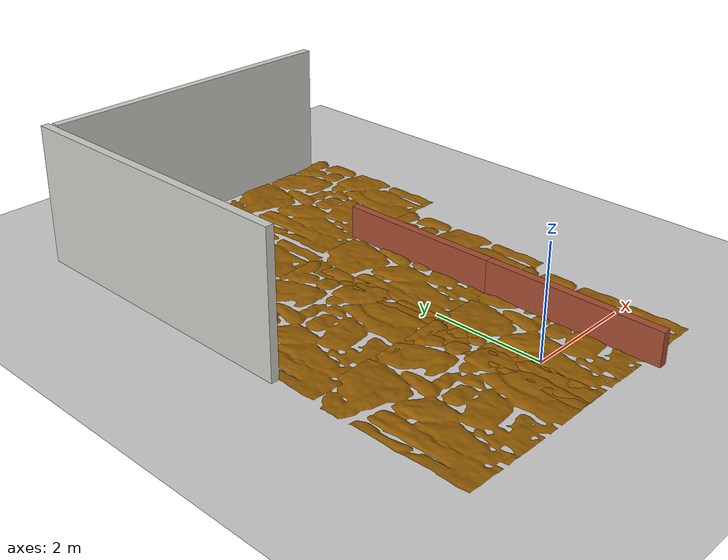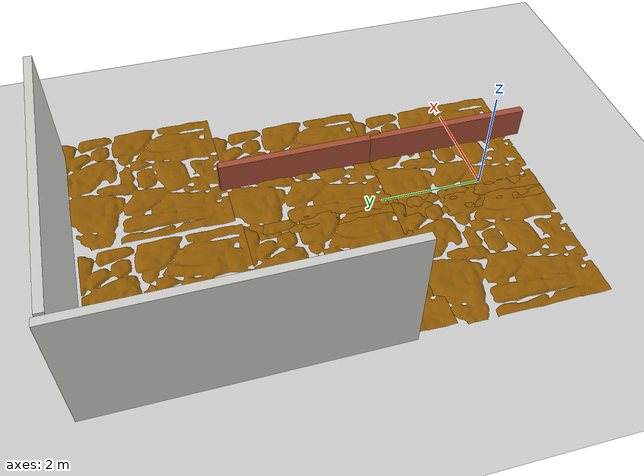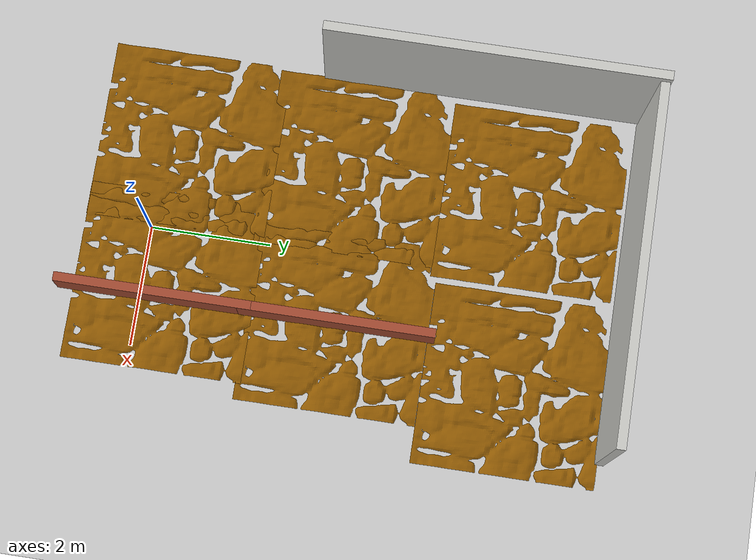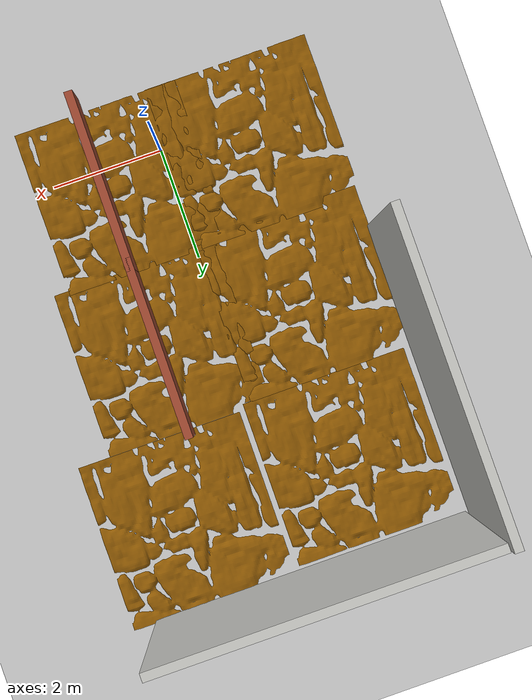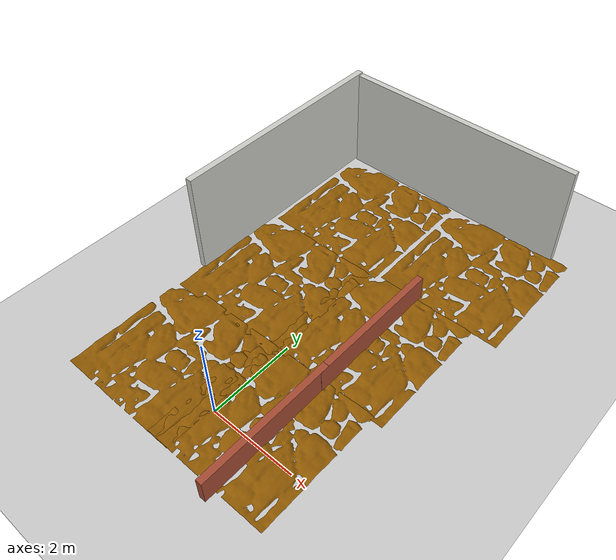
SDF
<sdf version="1.6">
 <world name="default">
  <model name="ground_plane">
   <static>1</static>
   <link name="link">
    <collision name="collision">
     <geometry><plane><normal>0 0 1</normal><size>100 100</size></plane></geometry>
     <surface>
      <contact><collide_bitmask>65535</collide_bitmask></contact>
      <friction><ode><mu>100</mu><mu2>50</mu2></ode></friction>
     </surface>
    </collision>
    <visual name="visual">
     <cast_shadows>0</cast_shadows>
     <geometry><plane><normal>0 0 1</normal><size>100 100</size></plane></geometry>
     <material>
      <script><uri>file://media/materials/scripts/gazebo.material</uri><name>Gazebo/Grey</name></script>
     </material>
    </visual>
   </link>
  </model>
  <model name="pared_corta_ladrillo">
   <pose>1.1558 0.273861 0 0 -0 0</pose>
   <link name="Wall_13">
    <collision name="Wall_13_Collision">
     <geometry><box><size>3.25 0.15 0.6</size></box></geometry>
     <pose>0 0 0.3 0 -0 0</pose>
    </collision>
    <visual name="Wall_13_Visual">
     <pose>0 0 0.3 0 -0 0</pose>
     <geometry><box><size>3.25 0.15 0.6</size></box></geometry>
     <material>
      <script><uri>file://media/materials/scripts/gazebo.material</uri><name>Gazebo/Bricks</name></script>
      <ambient>0.996078 0.47451 0.0196078 1</ambient>
     </material>
     <meta><layer>0</layer></meta>
    </visual>
    <pose>0 -0 0 0 -0 1.5708</pose>
   </link>
   <static>1</static>
  </model>
  <model name="pared_corta_ladrillo_0">
   <pose>1.15661 3.29537 0 0 -0 0</pose>
   <link name="Wall_13">
    <collision name="Wall_13_Collision">
     <geometry><box><size>3.25 0.15 0.6</size></box></geometry>
     <pose>0 0 0.3 0 -0 0</pose>
    </collision>
    <visual name="Wall_13_Visual">
     <pose>0 0 0.3 0 -0 0</pose>
     <geometry><box><size>3.25 0.15 0.6</size></box></geometry>
     <material>
      <script><uri>file://media/materials/scripts/gazebo.material</uri><name>Gazebo/Bricks</name></script>
      <ambient>0.996078 0.47451 0.0196078 1</ambient>
     </material>
     <meta><layer>0</layer></meta>
    </visual>
    <pose>0 -0 0 0 -0 1.5708</pose>
   </link>
   <static>1</static>
  </model>
  <model name="pared_1">
   <pose>-3.06855 5.20533 0 0 -0 0</pose>
   <link name="Wall_21">
    <collision name="Wall_21_Collision">
     <geometry><box><size>5.5 0.15 2.5</size></box></geometry>
     <pose>0 0 1.25 0 -0 0</pose>
    </collision>
    <visual name="Wall_21_Visual">
     <pose>0 0 1.25 0 -0 0</pose>
     <geometry><box><size>5.5 0.15 2.5</size></box></geometry>
     <material>
      <script><uri>file://media/materials/scripts/gazebo.material</uri><name>Gazebo/CeilingTiled</name></script>
      <ambient>1 1 1 1</ambient>
     </material>
     <meta><layer>0</layer></meta>
    </visual>
    <pose>0 0 0 0 -0 -1.5708</pose>
   </link>
   <static>1</static>
  </model>
  <model name="pared_2">
   <pose>-0.074522 7.8419 0 0 -0 0</pose>
   <link name="Wall_24">
    <collision name="Wall_24_Collision">
     <geometry><box><size>5.75 0.15 2.5</size></box></geometry>
     <pose>0 0 1.25 0 -0 0</pose>
    </collision>
    <visual name="Wall_24_Visual">
     <pose>0 0 1.25 0 -0 0</pose>
     <geometry><box><size>5.75 0.15 2.5</size></box></geometry>
     <material>
      <script><uri>file://media/materials/scripts/gazebo.material</uri><name>Gazebo/CeilingTiled</name></script>
      <ambient>1 1 1 1</ambient>
     </material>
     <meta><layer>0</layer></meta>
    </visual>
   </link>
   <static>1</static>
  </model>
  <model name="suelo_1_1">
   <link name="link_0">
    <inertial>
     <mass>1</mass>
     <inertia>
      <ixx>0.166667</ixx>
      <ixy>0</ixy>
      <ixz>0</ixz>
      <iyy>0.166667</iyy>
      <iyz>0</iyz>
      <izz>0.166667</izz>
     </inertia>
    </inertial>
    <pose>-2e-06 0 0 0 -0 0</pose>
    <gravity>0</gravity>
    <visual name="visual">
     <pose>0 0 0 1.57 -0 0</pose>
     <geometry>
      <mesh>
       <uri>/home/christyan/catkin_sureveg/src/explorador_2/worlds/Plantas/roca2.stl</uri>
       <scale>0.005 0.003 0.005</scale>
      </mesh>
     </geometry>
     <material>
      <lighting>1</lighting>
      <script><uri>file://media/materials/scripts/gazebo.material</uri><name>Gazebo/Grey</name></script>
      <shader type="vertex"><normal_map>__default__</normal_map></shader>
      <ambient>0.561 0.349 0.008 1</ambient>
      <diffuse>0.333 0.341 0.325 1</diffuse>
      <specular>0.561 0.349 0.008 1</specular>
      <emissive>0 0 0 1</emissive>
     </material>
    </visual>
    <collision name="collision">
     <pose>0 0 0 1.57 -0 0</pose>
     <geometry>
      <mesh>
       <uri>/home/christyan/catkin_sureveg/src/explorador_2/worlds/Plantas/roca2.stl</uri>
       <scale>0.005 0.003 0.005</scale>
      </mesh>
     </geometry>
     <surface>
      <friction>
       <ode><mu>1</mu><mu2>1</mu2><fdir1>0 0 0</fdir1><slip1>0</slip1><slip2>0</slip2></ode>
       <torsional>
        <coefficient>1</coefficient>
        <patch_radius>0</patch_radius>
        <surface_radius>0</surface_radius>
        <use_patch_radius>1</use_patch_radius>
        <ode><slip>0</slip></ode>
       </torsional>
      </friction>
      <bounce><restitution_coefficient>0</restitution_coefficient><threshold>1e+06</threshold></bounce>
      <contact>
       <collide_without_contact>1</collide_without_contact>
       <collide_without_contact_bitmask>1</collide_without_contact_bitmask>
       <collide_bitmask>1</collide_bitmask>
       <ode>
        <soft_cfm>0</soft_cfm>
        <soft_erp>0.2</soft_erp>
        <kp>1e+13</kp>
        <kd>1</kd>
        <max_vel>0.01</max_vel>
        <min_depth>0</min_depth>
       </ode>
       <bullet>
        <split_impulse>1</split_impulse>
        <split_impulse_penetration_threshold>-0.01</split_impulse_penetration_threshold>
        <soft_cfm>0</soft_cfm>
        <soft_erp>0.2</soft_erp>
        <kp>1e+13</kp>
        <kd>1</kd>
       </bullet>
      </contact>
     </surface>
    </collision>
   </link>
   <static>0</static>
   <pose>1.72058 6.30894 0 0 -0 0</pose>
  </model>
  <model name="suelo_1">
   <link name="link_0">
    <inertial>
     <mass>1</mass>
     <inertia>
      <ixx>0.166667</ixx>
      <ixy>0</ixy>
      <ixz>0</ixz>
      <iyy>0.166667</iyy>
      <iyz>0</iyz>
      <izz>0.166667</izz>
     </inertia>
    </inertial>
    <pose>-2e-06 0 0 0 -0 0</pose>
    <gravity>0</gravity>
    <visual name="visual">
     <pose>0 0 0 1.57 -0 0</pose>
     <geometry>
      <mesh>
       <uri>/home/christyan/catkin_sureveg/src/explorador_2/worlds/Plantas/roca2.stl</uri>
       <scale>0.005 0.003 0.005</scale>
      </mesh>
     </geometry>
     <material>
      <lighting>1</lighting>
      <script><uri>file://media/materials/scripts/gazebo.material</uri><name>Gazebo/Grey</name></script>
      <shader type="vertex"><normal_map>__default__</normal_map></shader>
      <ambient>0.561 0.349 0.008 1</ambient>
      <diffuse>0.333 0.341 0.325 1</diffuse>
      <specular>0.561 0.349 0.008 1</specular>
      <emissive>0 0 0 1</emissive>
     </material>
    </visual>
    <collision name="collision">
     <pose>0 0 0 1.57 -0 0</pose>
     <geometry>
      <mesh>
       <uri>/home/christyan/catkin_sureveg/src/explorador_2/worlds/Plantas/roca2.stl</uri>
       <scale>0.005 0.003 0.005</scale>
      </mesh>
     </geometry>
     <surface>
      <friction>
       <ode><mu>1</mu><mu2>1</mu2><fdir1>0 0 0</fdir1><slip1>0</slip1><slip2>0</slip2></ode>
       <torsional>
        <coefficient>1</coefficient>
        <patch_radius>0</patch_radius>
        <surface_radius>0</surface_radius>
        <use_patch_radius>1</use_patch_radius>
        <ode><slip>0</slip></ode>
       </torsional>
      </friction>
      <bounce><restitution_coefficient>0</restitution_coefficient><threshold>1e+06</threshold></bounce>
      <contact>
       <collide_without_contact>1</collide_without_contact>
       <collide_without_contact_bitmask>1</collide_without_contact_bitmask>
       <collide_bitmask>1</collide_bitmask>
       <ode>
        <soft_cfm>0</soft_cfm>
        <soft_erp>0.2</soft_erp>
        <kp>1e+13</kp>
        <kd>1</kd>
        <max_vel>0.01</max_vel>
        <min_depth>0</min_depth>
       </ode>
       <bullet>
        <split_impulse>1</split_impulse>
        <split_impulse_penetration_threshold>-0.01</split_impulse_penetration_threshold>
        <soft_cfm>0</soft_cfm>
        <soft_erp>0.2</soft_erp>
        <kp>1e+13</kp>
        <kd>1</kd>
       </bullet>
      </contact>
     </surface>
    </collision>
   </link>
   <static>0</static>
   <pose>-1.38068 6.20388 0 0 -0 0</pose>
  </model>
  <model name="suelo_1_0">
   <link name="link_0">
    <inertial>
     <mass>1</mass>
     <inertia>
      <ixx>0.166667</ixx>
      <ixy>0</ixy>
      <ixz>0</ixz>
      <iyy>0.166667</iyy>
      <iyz>0</iyz>
      <izz>0.166667</izz>
     </inertia>
    </inertial>
    <pose>-2e-06 0 0 0 -0 0</pose>
    <gravity>0</gravity>
    <visual name="visual">
     <pose>0 0 0 1.57 -0 0</pose>
     <geometry>
      <mesh>
       <uri>/home/christyan/catkin_sureveg/src/explorador_2/worlds/Plantas/roca2.stl</uri>
       <scale>0.005 0.003 0.005</scale>
      </mesh>
     </geometry>
     <material>
      <lighting>1</lighting>
      <script><uri>file://media/materials/scripts/gazebo.material</uri><name>Gazebo/Grey</name></script>
      <shader type="vertex"><normal_map>__default__</normal_map></shader>
      <ambient>0.561 0.349 0.008 1</ambient>
      <diffuse>0.333 0.341 0.325 1</diffuse>
      <specular>0.561 0.349 0.008 1</specular>
      <emissive>0 0 0 1</emissive>
     </material>
    </visual>
    <collision name="collision">
     <pose>0 0 0 1.57 -0 0</pose>
     <geometry>
      <mesh>
       <uri>/home/christyan/catkin_sureveg/src/explorador_2/worlds/Plantas/roca2.stl</uri>
       <scale>0.005 0.003 0.005</scale>
      </mesh>
     </geometry>
     <surface>
      <friction>
       <ode><mu>1</mu><mu2>1</mu2><fdir1>0 0 0</fdir1><slip1>0</slip1><slip2>0</slip2></ode>
       <torsional>
        <coefficient>1</coefficient>
        <patch_radius>0</patch_radius>
        <surface_radius>0</surface_radius>
        <use_patch_radius>1</use_patch_radius>
        <ode><slip>0</slip></ode>
       </torsional>
      </friction>
      <bounce><restitution_coefficient>0</restitution_coefficient><threshold>1e+06</threshold></bounce>
      <contact>
       <collide_without_contact>1</collide_without_contact>
       <collide_without_contact_bitmask>1</collide_without_contact_bitmask>
       <collide_bitmask>1</collide_bitmask>
       <ode>
        <soft_cfm>0</soft_cfm>
        <soft_erp>0.2</soft_erp>
        <kp>1e+13</kp>
        <kd>1</kd>
        <max_vel>0.01</max_vel>
        <min_depth>0</min_depth>
       </ode>
       <bullet>
        <split_impulse>1</split_impulse>
        <split_impulse_penetration_threshold>-0.01</split_impulse_penetration_threshold>
        <soft_cfm>0</soft_cfm>
        <soft_erp>0.2</soft_erp>
        <kp>1e+13</kp>
        <kd>1</kd>
       </bullet>
      </contact>
     </surface>
    </collision>
   </link>
   <static>0</static>
   <pose>-1.5235 3.21161 0 0 -0 0</pose>
  </model>
  <model name="suelo_1_2">
   <link name="link_0">
    <inertial>
     <mass>1</mass>
     <inertia>
      <ixx>0.166667</ixx>
      <ixy>0</ixy>
      <ixz>0</ixz>
      <iyy>0.166667</iyy>
      <iyz>0</iyz>
      <izz>0.166667</izz>
     </inertia>
    </inertial>
    <pose>-2e-06 0 0 0 -0 0</pose>
    <gravity>0</gravity>
    <visual name="visual">
     <pose>0 0 0 1.57 -0 0</pose>
     <geometry>
      <mesh>
       <uri>/home/christyan/catkin_sureveg/src/explorador_2/worlds/Plantas/roca2.stl</uri>
       <scale>0.005 0.003 0.005</scale>
      </mesh>
     </geometry>
     <material>
      <lighting>1</lighting>
      <script><uri>file://media/materials/scripts/gazebo.material</uri><name>Gazebo/Grey</name></script>
      <shader type="vertex"><normal_map>__default__</normal_map></shader>
      <ambient>0.561 0.349 0.008 1</ambient>
      <diffuse>0.333 0.341 0.325 1</diffuse>
      <specular>0.561 0.349 0.008 1</specular>
      <emissive>0 0 0 1</emissive>
     </material>
    </visual>
    <collision name="collision">
     <pose>0 0 0 1.57 -0 0</pose>
     <geometry>
      <mesh>
       <uri>/home/christyan/catkin_sureveg/src/explorador_2/worlds/Plantas/roca2.stl</uri>
       <scale>0.005 0.003 0.005</scale>
      </mesh>
     </geometry>
     <surface>
      <friction>
       <ode><mu>1</mu><mu2>1</mu2><fdir1>0 0 0</fdir1><slip1>0</slip1><slip2>0</slip2></ode>
       <torsional>
        <coefficient>1</coefficient>
        <patch_radius>0</patch_radius>
        <surface_radius>0</surface_radius>
        <use_patch_radius>1</use_patch_radius>
        <ode><slip>0</slip></ode>
       </torsional>
      </friction>
      <bounce><restitution_coefficient>0</restitution_coefficient><threshold>1e+06</threshold></bounce>
      <contact>
       <collide_without_contact>1</collide_without_contact>
       <collide_without_contact_bitmask>1</collide_without_contact_bitmask>
       <collide_bitmask>1</collide_bitmask>
       <ode>
        <soft_cfm>0</soft_cfm>
        <soft_erp>0.2</soft_erp>
        <kp>1e+13</kp>
        <kd>1</kd>
        <max_vel>0.01</max_vel>
        <min_depth>0</min_depth>
       </ode>
       <bullet>
        <split_impulse>1</split_impulse>
        <split_impulse_penetration_threshold>-0.01</split_impulse_penetration_threshold>
        <soft_cfm>0</soft_cfm>
        <soft_erp>0.2</soft_erp>
        <kp>1e+13</kp>
        <kd>1</kd>
       </bullet>
      </contact>
     </surface>
    </collision>
   </link>
   <static>0</static>
   <pose>1.12817 3.30368 0 0 -0 0</pose>
  </model>
  <model name="suelo_1_3">
   <link name="link_0">
    <inertial>
     <mass>1</mass>
     <inertia>
      <ixx>0.166667</ixx>
      <ixy>0</ixy>
      <ixz>0</ixz>
      <iyy>0.166667</iyy>
      <iyz>0</iyz>
      <izz>0.166667</izz>
     </inertia>
    </inertial>
    <pose>-2e-06 0 0 0 -0 0</pose>
    <gravity>0</gravity>
    <visual name="visual">
     <pose>0 0 0 1.57 -0 0</pose>
     <geometry>
      <mesh>
       <uri>/home/christyan/catkin_sureveg/src/explorador_2/worlds/Plantas/roca2.stl</uri>
       <scale>0.005 0.003 0.005</scale>
      </mesh>
     </geometry>
     <material>
      <lighting>1</lighting>
      <script><uri>file://media/materials/scripts/gazebo.material</uri><name>Gazebo/Grey</name></script>
      <shader type="vertex"><normal_map>__default__</normal_map></shader>
      <ambient>0.561 0.349 0.008 1</ambient>
      <diffuse>0.333 0.341 0.325 1</diffuse>
      <specular>0.561 0.349 0.008 1</specular>
      <emissive>0 0 0 1</emissive>
     </material>
    </visual>
    <collision name="collision">
     <pose>0 0 0 1.57 -0 0</pose>
     <geometry>
      <mesh>
       <uri>/home/christyan/catkin_sureveg/src/explorador_2/worlds/Plantas/roca2.stl</uri>
       <scale>0.005 0.003 0.005</scale>
      </mesh>
     </geometry>
     <surface>
      <friction>
       <ode><mu>1</mu><mu2>1</mu2><fdir1>0 0 0</fdir1><slip1>0</slip1><slip2>0</slip2></ode>
       <torsional>
        <coefficient>1</coefficient>
        <patch_radius>0</patch_radius>
        <surface_radius>0</surface_radius>
        <use_patch_radius>1</use_patch_radius>
        <ode><slip>0</slip></ode>
       </torsional>
      </friction>
      <bounce><restitution_coefficient>0</restitution_coefficient><threshold>1e+06</threshold></bounce>
      <contact>
       <collide_without_contact>1</collide_without_contact>
       <collide_without_contact_bitmask>1</collide_without_contact_bitmask>
       <collide_bitmask>1</collide_bitmask>
       <ode>
        <soft_cfm>0</soft_cfm>
        <soft_erp>0.2</soft_erp>
        <kp>1e+13</kp>
        <kd>1</kd>
        <max_vel>0.01</max_vel>
        <min_depth>0</min_depth>
       </ode>
       <bullet>
        <split_impulse>1</split_impulse>
        <split_impulse_penetration_threshold>-0.01</split_impulse_penetration_threshold>
        <soft_cfm>0</soft_cfm>
        <soft_erp>0.2</soft_erp>
        <kp>1e+13</kp>
        <kd>1</kd>
       </bullet>
      </contact>
     </surface>
    </collision>
   </link>
   <static>0</static>
   <pose>-1.57932 0.383769 0 0 -0 0</pose>
  </model>
  <model name="suelo_1_4">
   <link name="link_0">
    <inertial>
     <mass>1</mass>
     <inertia>
      <ixx>0.166667</ixx>
      <ixy>0</ixy>
      <ixz>0</ixz>
      <iyy>0.166667</iyy>
      <iyz>0</iyz>
      <izz>0.166667</izz>
     </inertia>
    </inertial>
    <pose>-2e-06 0 0 0 -0 0</pose>
    <gravity>0</gravity>
    <visual name="visual">
     <pose>0 0 0 1.57 -0 0</pose>
     <geometry>
      <mesh>
       <uri>/home/christyan/catkin_sureveg/src/explorador_2/worlds/Plantas/roca2.stl</uri>
       <scale>0.005 0.003 0.005</scale>
      </mesh>
     </geometry>
     <material>
      <lighting>1</lighting>
      <script><uri>file://media/materials/scripts/gazebo.material</uri><name>Gazebo/Grey</name></script>
      <shader type="vertex"><normal_map>__default__</normal_map></shader>
      <ambient>0.561 0.349 0.008 1</ambient>
      <diffuse>0.333 0.341 0.325 1</diffuse>
      <specular>0.561 0.349 0.008 1</specular>
      <emissive>0 0 0 1</emissive>
     </material>
    </visual>
    <collision name="collision">
     <pose>0 0 0 1.57 -0 0</pose>
     <geometry>
      <mesh>
       <uri>/home/christyan/catkin_sureveg/src/explorador_2/worlds/Plantas/roca2.stl</uri>
       <scale>0.005 0.003 0.005</scale>
      </mesh>
     </geometry>
     <surface>
      <friction>
       <ode><mu>1</mu><mu2>1</mu2><fdir1>0 0 0</fdir1><slip1>0</slip1><slip2>0</slip2></ode>
       <torsional>
        <coefficient>1</coefficient>
        <patch_radius>0</patch_radius>
        <surface_radius>0</surface_radius>
        <use_patch_radius>1</use_patch_radius>
        <ode><slip>0</slip></ode>
       </torsional>
      </friction>
      <bounce><restitution_coefficient>0</restitution_coefficient><threshold>1e+06</threshold></bounce>
      <contact>
       <collide_without_contact>1</collide_without_contact>
       <collide_without_contact_bitmask>1</collide_without_contact_bitmask>
       <collide_bitmask>1</collide_bitmask>
       <ode>
        <soft_cfm>0</soft_cfm>
        <soft_erp>0.2</soft_erp>
        <kp>1e+13</kp>
        <kd>1</kd>
        <max_vel>0.01</max_vel>
        <min_depth>0</min_depth>
       </ode>
       <bullet>
        <split_impulse>1</split_impulse>
        <split_impulse_penetration_threshold>-0.01</split_impulse_penetration_threshold>
        <soft_cfm>0</soft_cfm>
        <soft_erp>0.2</soft_erp>
        <kp>1e+13</kp>
        <kd>1</kd>
       </bullet>
      </contact>
     </surface>
    </collision>
   </link>
   <static>0</static>
   <pose>0.861675 0.391435 0 0 -0 0</pose>
  </model>
 </world>
</sdf>
